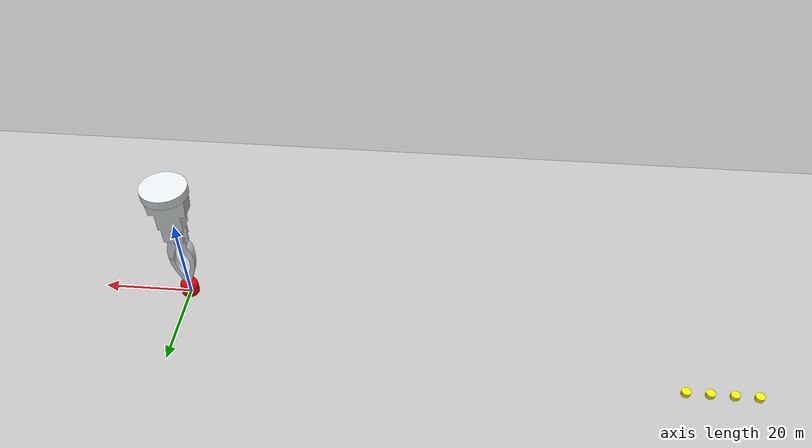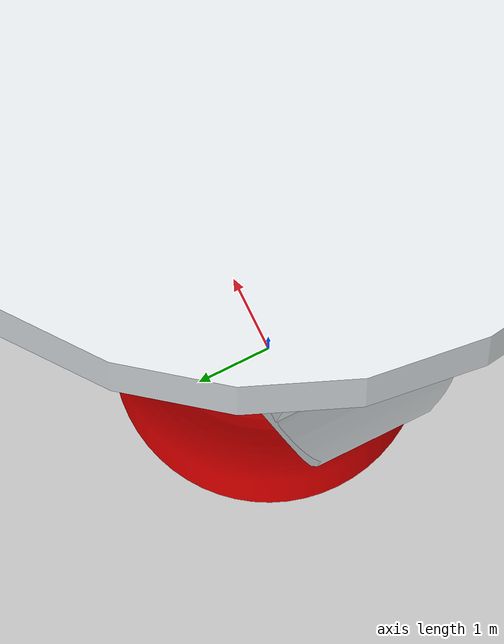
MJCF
<!--# Created by Xinchao Song on June 30, 2019.-->

<mujoco model="The 1-D Bump Model">
    <compiler angle="radian"/>

    <option>
        <flag gravity="disable"/>
    </option>

    <asset>
        <include file="gripah_asset.xml"/>
        <mesh name="mesh:bump" file="objects/bump_40_mujoco.STL"/>
        <texture name="tex:floor" type="2d" builtin="checker" rgb1="1 1 1" rgb2="0 0 0" width="100" height="100"
                 mark="cross"/>
        <material name="mat:floor" reflectance="0.1" texture="tex:floor" texrepeat="60 60"/>
    </asset>

    <default>
        <joint armature="1" damping="1"/>
        <geom contype="1" condim="3" friction="1 0.1 0.1"/>

        <default class="bump">
            <geom type="mesh" mesh="mesh:bump" mass="0.25" quat="1 1 0 0"/>
        </default>

        <default class="blocker">
            <geom type="cylinder" size="1 0.5" rgba="1 1 0 1"/>
        </default>

        <default class="cube">
            <geom type="box" size="0.5 0.5 0.5" rgba="0 1 0 0.2"/>
        </default>

        <default class="bump-slider">
            <joint type="slide" axis="1 0 0" damping="10" limited="false" range="0 0"/>
        </default>
    </default>

    <worldbody>
        <light name="light" directional="true" diffuse="0.8 0.8 0.8" specular="0.4 0.4 0.4" pos="0 -10 20"
               dir="0 1 -1"/>
        <geom name="floor" type="plane" material="mat:floor" size="480 480 480" pos="0 0 0" rgba="0.752 0.752 0.752 1"
              quat="1 0 0 0"/>

        <include file="gripah_body.xml"/>

        <body name="bump1" pos="0 0 0.001">
            <geom name="bump1" rgba="1 0 0 1" class="bump"/>
            <joint name="slide:bump1" class="bump-slider"/>
        </body>
        <body name="bump2" pos="0 0 0.001">
            <geom name="bump2" rgba="0 0 1 1" class="bump"/>
            <joint name="slide:bump2" class="bump-slider"/>
        </body>

        <body name="bump1-blocker1" pos="-110 20 0.5">
            <geom name="geom:bump1-blocker-1" class="blocker"/>
        </body>
        <body name="bump1-blocker2" pos="-115 20 0.5">
            <geom name="geom:bump1-blocker-2" class="blocker"/>
        </body>
        <body name="bump2-blocker1" pos="-120 20 0.5">
            <geom name="geom:bump2-blocker-1" class="blocker"/>
        </body>
        <body name="bump2-blocker2" pos="-125 20 0.5">
            <geom name="geom:bump2-blocker-2" class="blocker"/>
        </body>

        <site name="subgoal1" size="2" pos="0 0 0.1" rgba="0 1 0 1.0" type="sphere"/>
        <site name="subgoal2" size="2" pos="0 0 0.1" rgba="1 0 0 1.0" type="sphere"/>

        <include file="grid_markers.xml"/>
    </worldbody>

    <actuator>
        <velocity name="velocity:x" joint="slide:gripah-base-x" gear="1" kv="100"/>
        <velocity name="velocity:narrow-finger" joint="hinge:narrow-finger" gear="1" kv="100"/>
        <position name="position:narrow-finger" joint="hinge:narrow-finger" gear="1" kp="100"/>
    </actuator>

    <sensor>
        <framepos name="sensor:gripah-center" objtype="site" objname="gripah-center"/>
        <framepos name="sensor:wide-finger-tip" objtype="site" objname="wide-finger-tip"/>
    </sensor>
</mujoco>

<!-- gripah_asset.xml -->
<!--# Created by Xinchao Song on May 21, 2020.-->

<mujoco>
    <mesh name="mesh:wrist" file="gripah/wrist_rescaled.STL"/>
    <mesh name="mesh:wide-finger" file="gripah/wide_finger_rescaled.STL"/>
    <mesh name="mesh:wide-finger-tip" file="gripah/wide_finger_tip.STL"/>
    <mesh name="mesh:narrow-finger" file="gripah/narrow_finger_rescaled.STL"/>
    <mesh name="mesh:narrow-finger-tip" file="gripah/narrow_finger_tip.STL"/>
</mujoco>

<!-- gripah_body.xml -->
<!--# Created by Xinchao Song on May 21, 2020.-->

<mujoco>
    <body name="gripah-base" pos="0 0 30" quat="0 0.707 0 -0.707">
        <geom name="geom:gripah-base" type="cylinder" size="5 1" quat="1 0 1 0" mass="0.01"
              rgba="0.89804 0.91765 0.92941 1"/>
        <joint type="slide" name="slide:gripah-base-x" axis="0 0 -1" limited="true" range="0 100"/>

        <body name="wrist" pos="6.95 0 0" quat="1 0 0 0">
            <inertial pos="-2.0421 0 0" mass="0.18" diaginertia="1 1 1"/>
            <geom name="geom:wrist" type="mesh" mesh="mesh:wrist" rgba="0.89804 0.91765 0.92941 1"/>

            <body name="wide-finger" pos="5.5 0 0" quat="1 1 0 0">
                <inertial pos="5.6976 1.5337 -2.3122e-07" quat="0.653281 0.653281 -0.270598 -0.270598" mass="0.0000167"
                          diaginertia="1.01 1 0.99"/>
                <geom name="geom:wide-finger" type="mesh" rgba="0.89804 0.91765 0.92941 1" mesh="mesh:wide-finger"
                      contype="0" conaffinity="0"/>
                <geom name="geom:wide-finger-tip" type="mesh" rgba="0.89804 0.91765 0.92941 1"
                      mesh="mesh:wide-finger-tip"/>
                <joint name="hinge:wide-finger" pos="0 0 0" axis="0 0 1" limited="true" range="-1.0472 1.0472"
                       damping="50" stiffness="1" springref="0" ref="0"/>
                <site name="wide-finger-tip" size="0.1" pos="15 0.375 0" rgba="0 0 0 1" type="sphere"/>
            </body>

            <body name="narrow-finger" pos="5.5 0 0" quat="1 1 0 0">
                <inertial pos="5.2556 1.3896 2.3305e-05" quat="0.653281 0.653281 -0.270598 -0.270598"
                          mass="0.0000166" diaginertia="1.03 1 0.97"/>
                <geom name="geom:narrow-finger" type="mesh" rgba="0.89804 0.91765 0.92941 1" mesh="mesh:narrow-finger"
                      contype="0" conaffinity="0"/>
                <geom name="geom:narrow-finger-tip" type="mesh" rgba="0.89804 0.91765 0.92941 1"
                      mesh="mesh:narrow-finger-tip"/>
                <joint name="hinge:narrow-finger" pos="0 0 0" axis="0 0 1" limited="true" range="-1.0472 1.0472"
                       damping="50" stiffness="1" springref="0" ref="0"/>
            </body>

            <site name="gripah-center" size="0.1" pos="0 0 0" rgba="0 0 0 1" type="sphere"/>
        </body>
    </body>
</mujoco>

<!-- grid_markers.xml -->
<!--# Created by Xinchao Song on August 17, 2020.-->

<mujoco>
    <site name="grid-marker-0" size="1" pos="0 -0.011 0" rgba="1 0 1 0.5" type="sphere"/>
    <site name="grid-marker-1" size="1" pos="0 -0.012 0" rgba="1 0 1 0.5" type="sphere"/>
    <site name="grid-marker-2" size="1" pos="0 -0.013 0" rgba="1 0 1 0.5" type="sphere"/>
</mujoco>
